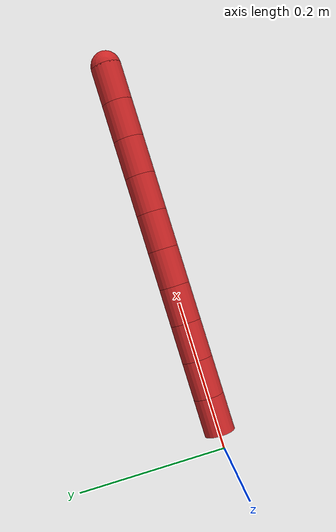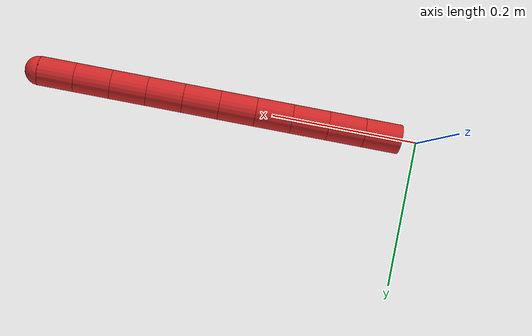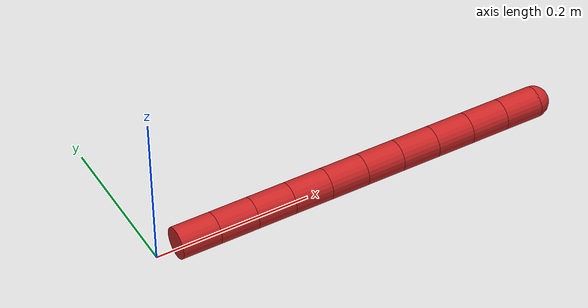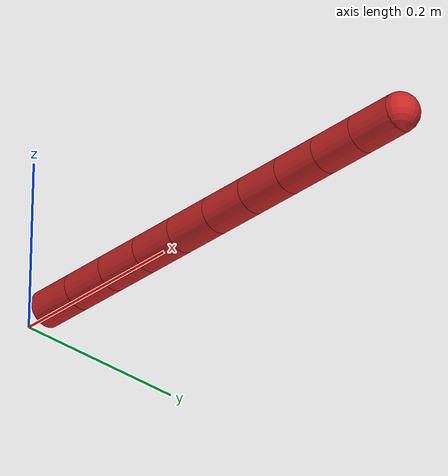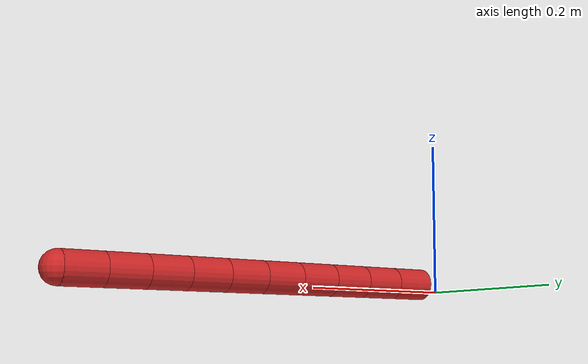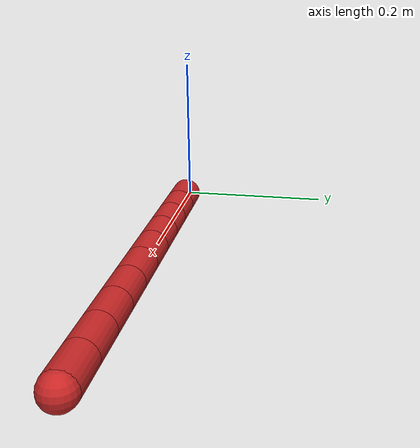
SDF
<sdf version="1.6">
    <model name="link_bot">
        <pose frame="">0 0 0.01 0 0 0</pose>

        <link name="rope_link_1">
        <pose frame="">0.05 0 0 3.14159 -1.57079 3.14159</pose>
        <inertial>
            <pose frame="">0.025 0 0 0 0 0</pose>
            <mass>0.05</mass>
            <inertia>
                <ixx>1.5416666666666668e-05</ixx>
                <ixy>0</ixy>
                <ixz>0</ixz>
                <iyy>1.5416666666666668e-05</iyy>
                <iyz>0</iyz>
                <izz>1.0e-05</izz>
            </inertia>
        </inertial>
        <collision name="link_1_collision">
            <pose frame="">0 0 0 0 0 0</pose>
            <geometry>
                <box>
                    <size>0.04000000000000001 0.04000000000000001 0.02</size>
                </box>
            </geometry>
            <surface>
                <friction>
                    <ode>
                        <mu>0.10</mu>
                        <mu2>0.10</mu2>
                    </ode>
                </friction>
                <contact>
                    <ode>
                        <kp>1e15</kp>
                        <kd>1e13</kd>
                    </ode>
                </contact>
            </surface>
        </collision>

        <visual name="link_1_visual">
            <cast_shadows>0</cast_shadows>
            <pose frame="">0 0 0 0 0 0</pose>
            <geometry>
                <cylinder>
                    <length>0.05</length>
                    <radius>0.02</radius>
                </cylinder>
            </geometry>
            <material>
                <script>
                    <name>Gazebo/Red</name>
                    <uri>file://media/materials/scripts/gazebo.material</uri>
                </script>
            </material>
        </visual>
        <self_collide>1</self_collide>
        </link>

        <link name="rope_link_2">
        <pose frame="">0.1 0 0 3.14159 -1.57079 3.14159</pose>
        <inertial>
            <pose frame="">0.025 0 0 0 0 0</pose>
            <mass>0.05</mass>
            <inertia>
                <ixx>1.5416666666666668e-05</ixx>
                <ixy>0</ixy>
                <ixz>0</ixz>
                <iyy>1.5416666666666668e-05</iyy>
                <iyz>0</iyz>
                <izz>1.0e-05</izz>
            </inertia>
        </inertial>
        <collision name="link_2_collision">
            <pose frame="">0 0 0 0 0 0</pose>
            <geometry>
                <box>
                    <size>0.04000000000000001 0.04000000000000001 0.02</size>
                </box>
            </geometry>
            <surface>
                <friction>
                    <ode>
                        <mu>0.10</mu>
                        <mu2>0.10</mu2>
                    </ode>
                </friction>
                <contact>
                    <ode>
                        <kp>1e15</kp>
                        <kd>1e13</kd>
                    </ode>
                </contact>
            </surface>
        </collision>

        <visual name="link_2_visual">
            <cast_shadows>0</cast_shadows>
            <pose frame="">0 0 0 0 0 0</pose>
            <geometry>
                <cylinder>
                    <length>0.05</length>
                    <radius>0.02</radius>
                </cylinder>
            </geometry>
            <material>
                <script>
                    <name>Gazebo/Red</name>
                    <uri>file://media/materials/scripts/gazebo.material</uri>
                </script>
            </material>
        </visual>
        <self_collide>1</self_collide>
        </link>

        <link name="rope_link_3">
        <pose frame="">0.15000000000000002 0 0 3.14159 -1.57079 3.14159</pose>
        <inertial>
            <pose frame="">0.025 0 0 0 0 0</pose>
            <mass>0.05</mass>
            <inertia>
                <ixx>1.5416666666666668e-05</ixx>
                <ixy>0</ixy>
                <ixz>0</ixz>
                <iyy>1.5416666666666668e-05</iyy>
                <iyz>0</iyz>
                <izz>1.0e-05</izz>
            </inertia>
        </inertial>
        <collision name="link_3_collision">
            <pose frame="">0 0 0 0 0 0</pose>
            <geometry>
                <box>
                    <size>0.04000000000000001 0.04000000000000001 0.02</size>
                </box>
            </geometry>
            <surface>
                <friction>
                    <ode>
                        <mu>0.10</mu>
                        <mu2>0.10</mu2>
                    </ode>
                </friction>
                <contact>
                    <ode>
                        <kp>1e15</kp>
                        <kd>1e13</kd>
                    </ode>
                </contact>
            </surface>
        </collision>

        <visual name="link_3_visual">
            <cast_shadows>0</cast_shadows>
            <pose frame="">0 0 0 0 0 0</pose>
            <geometry>
                <cylinder>
                    <length>0.05</length>
                    <radius>0.02</radius>
                </cylinder>
            </geometry>
            <material>
                <script>
                    <name>Gazebo/Red</name>
                    <uri>file://media/materials/scripts/gazebo.material</uri>
                </script>
            </material>
        </visual>
        <self_collide>1</self_collide>
        </link>

        <link name="rope_link_4">
        <pose frame="">0.2 0 0 3.14159 -1.57079 3.14159</pose>
        <inertial>
            <pose frame="">0.025 0 0 0 0 0</pose>
            <mass>0.05</mass>
            <inertia>
                <ixx>1.5416666666666668e-05</ixx>
                <ixy>0</ixy>
                <ixz>0</ixz>
                <iyy>1.5416666666666668e-05</iyy>
                <iyz>0</iyz>
                <izz>1.0e-05</izz>
            </inertia>
        </inertial>
        <collision name="link_4_collision">
            <pose frame="">0 0 0 0 0 0</pose>
            <geometry>
                <box>
                    <size>0.04000000000000001 0.04000000000000001 0.02</size>
                </box>
            </geometry>
            <surface>
                <friction>
                    <ode>
                        <mu>0.10</mu>
                        <mu2>0.10</mu2>
                    </ode>
                </friction>
                <contact>
                    <ode>
                        <kp>1e15</kp>
                        <kd>1e13</kd>
                    </ode>
                </contact>
            </surface>
        </collision>

        <visual name="link_4_visual">
            <cast_shadows>0</cast_shadows>
            <pose frame="">0 0 0 0 0 0</pose>
            <geometry>
                <cylinder>
                    <length>0.05</length>
                    <radius>0.02</radius>
                </cylinder>
            </geometry>
            <material>
                <script>
                    <name>Gazebo/Red</name>
                    <uri>file://media/materials/scripts/gazebo.material</uri>
                </script>
            </material>
        </visual>
        <self_collide>1</self_collide>
        </link>

        <link name="rope_link_5">
        <pose frame="">0.25 0 0 3.14159 -1.57079 3.14159</pose>
        <inertial>
            <pose frame="">0.025 0 0 0 0 0</pose>
            <mass>0.05</mass>
            <inertia>
                <ixx>1.5416666666666668e-05</ixx>
                <ixy>0</ixy>
                <ixz>0</ixz>
                <iyy>1.5416666666666668e-05</iyy>
                <iyz>0</iyz>
                <izz>1.0e-05</izz>
            </inertia>
        </inertial>
        <collision name="link_5_collision">
            <pose frame="">0 0 0 0 0 0</pose>
            <geometry>
                <box>
                    <size>0.04000000000000001 0.04000000000000001 0.02</size>
                </box>
            </geometry>
            <surface>
                <friction>
                    <ode>
                        <mu>0.10</mu>
                        <mu2>0.10</mu2>
                    </ode>
                </friction>
                <contact>
                    <ode>
                        <kp>1e15</kp>
                        <kd>1e13</kd>
                    </ode>
                </contact>
            </surface>
        </collision>

        <visual name="link_5_visual">
            <cast_shadows>0</cast_shadows>
            <pose frame="">0 0 0 0 0 0</pose>
            <geometry>
                <cylinder>
                    <length>0.05</length>
                    <radius>0.02</radius>
                </cylinder>
            </geometry>
            <material>
                <script>
                    <name>Gazebo/Red</name>
                    <uri>file://media/materials/scripts/gazebo.material</uri>
                </script>
            </material>
        </visual>
        <self_collide>1</self_collide>
        </link>

        <link name="rope_link_6">
        <pose frame="">0.30000000000000004 0 0 3.14159 -1.57079 3.14159</pose>
        <inertial>
            <pose frame="">0.025 0 0 0 0 0</pose>
            <mass>0.05</mass>
            <inertia>
                <ixx>1.5416666666666668e-05</ixx>
                <ixy>0</ixy>
                <ixz>0</ixz>
                <iyy>1.5416666666666668e-05</iyy>
                <iyz>0</iyz>
                <izz>1.0e-05</izz>
            </inertia>
        </inertial>
        <collision name="link_6_collision">
            <pose frame="">0 0 0 0 0 0</pose>
            <geometry>
                <box>
                    <size>0.04000000000000001 0.04000000000000001 0.02</size>
                </box>
            </geometry>
            <surface>
                <friction>
                    <ode>
                        <mu>0.10</mu>
                        <mu2>0.10</mu2>
                    </ode>
                </friction>
                <contact>
                    <ode>
                        <kp>1e15</kp>
                        <kd>1e13</kd>
                    </ode>
                </contact>
            </surface>
        </collision>

        <visual name="link_6_visual">
            <cast_shadows>0</cast_shadows>
            <pose frame="">0 0 0 0 0 0</pose>
            <geometry>
                <cylinder>
                    <length>0.05</length>
                    <radius>0.02</radius>
                </cylinder>
            </geometry>
            <material>
                <script>
                    <name>Gazebo/Red</name>
                    <uri>file://media/materials/scripts/gazebo.material</uri>
                </script>
            </material>
        </visual>
        <self_collide>1</self_collide>
        </link>

        <link name="rope_link_7">
        <pose frame="">0.35000000000000003 0 0 3.14159 -1.57079 3.14159</pose>
        <inertial>
            <pose frame="">0.025 0 0 0 0 0</pose>
            <mass>0.05</mass>
            <inertia>
                <ixx>1.5416666666666668e-05</ixx>
                <ixy>0</ixy>
                <ixz>0</ixz>
                <iyy>1.5416666666666668e-05</iyy>
                <iyz>0</iyz>
                <izz>1.0e-05</izz>
            </inertia>
        </inertial>
        <collision name="link_7_collision">
            <pose frame="">0 0 0 0 0 0</pose>
            <geometry>
                <box>
                    <size>0.04000000000000001 0.04000000000000001 0.02</size>
                </box>
            </geometry>
            <surface>
                <friction>
                    <ode>
                        <mu>0.10</mu>
                        <mu2>0.10</mu2>
                    </ode>
                </friction>
                <contact>
                    <ode>
                        <kp>1e15</kp>
                        <kd>1e13</kd>
                    </ode>
                </contact>
            </surface>
        </collision>

        <visual name="link_7_visual">
            <cast_shadows>0</cast_shadows>
            <pose frame="">0 0 0 0 0 0</pose>
            <geometry>
                <cylinder>
                    <length>0.05</length>
                    <radius>0.02</radius>
                </cylinder>
            </geometry>
            <material>
                <script>
                    <name>Gazebo/Red</name>
                    <uri>file://media/materials/scripts/gazebo.material</uri>
                </script>
            </material>
        </visual>
        <self_collide>1</self_collide>
        </link>

        <link name="rope_link_8">
        <pose frame="">0.4 0 0 3.14159 -1.57079 3.14159</pose>
        <inertial>
            <pose frame="">0.025 0 0 0 0 0</pose>
            <mass>0.05</mass>
            <inertia>
                <ixx>1.5416666666666668e-05</ixx>
                <ixy>0</ixy>
                <ixz>0</ixz>
                <iyy>1.5416666666666668e-05</iyy>
                <iyz>0</iyz>
                <izz>1.0e-05</izz>
            </inertia>
        </inertial>
        <collision name="link_8_collision">
            <pose frame="">0 0 0 0 0 0</pose>
            <geometry>
                <box>
                    <size>0.04000000000000001 0.04000000000000001 0.02</size>
                </box>
            </geometry>
            <surface>
                <friction>
                    <ode>
                        <mu>0.10</mu>
                        <mu2>0.10</mu2>
                    </ode>
                </friction>
                <contact>
                    <ode>
                        <kp>1e15</kp>
                        <kd>1e13</kd>
                    </ode>
                </contact>
            </surface>
        </collision>

        <visual name="link_8_visual">
            <cast_shadows>0</cast_shadows>
            <pose frame="">0 0 0 0 0 0</pose>
            <geometry>
                <cylinder>
                    <length>0.05</length>
                    <radius>0.02</radius>
                </cylinder>
            </geometry>
            <material>
                <script>
                    <name>Gazebo/Red</name>
                    <uri>file://media/materials/scripts/gazebo.material</uri>
                </script>
            </material>
        </visual>
        <self_collide>1</self_collide>
        </link>

        <link name="rope_link_9">
        <pose frame="">0.45 0 0 3.14159 -1.57079 3.14159</pose>
        <inertial>
            <pose frame="">0.025 0 0 0 0 0</pose>
            <mass>0.05</mass>
            <inertia>
                <ixx>1.5416666666666668e-05</ixx>
                <ixy>0</ixy>
                <ixz>0</ixz>
                <iyy>1.5416666666666668e-05</iyy>
                <iyz>0</iyz>
                <izz>1.0e-05</izz>
            </inertia>
        </inertial>
        <collision name="link_9_collision">
            <pose frame="">0 0 0 0 0 0</pose>
            <geometry>
                <box>
                    <size>0.04000000000000001 0.04000000000000001 0.02</size>
                </box>
            </geometry>
            <surface>
                <friction>
                    <ode>
                        <mu>0.10</mu>
                        <mu2>0.10</mu2>
                    </ode>
                </friction>
                <contact>
                    <ode>
                        <kp>1e15</kp>
                        <kd>1e13</kd>
                    </ode>
                </contact>
            </surface>
        </collision>

        <visual name="link_9_visual">
            <cast_shadows>0</cast_shadows>
            <pose frame="">0 0 0 0 0 0</pose>
            <geometry>
                <cylinder>
                    <length>0.05</length>
                    <radius>0.02</radius>
                </cylinder>
            </geometry>
            <material>
                <script>
                    <name>Gazebo/Red</name>
                    <uri>file://media/materials/scripts/gazebo.material</uri>
                </script>
            </material>
        </visual>
        <self_collide>1</self_collide>
        </link>

        <link name="rope_link_10">
        <pose frame="">0.5 0 0 3.14159 -1.57079 3.14159</pose>
        <inertial>
            <pose frame="">0.025 0 0 0 0 0</pose>
            <mass>0.05</mass>
            <inertia>
                <ixx>1.5416666666666668e-05</ixx>
                <ixy>0</ixy>
                <ixz>0</ixz>
                <iyy>1.5416666666666668e-05</iyy>
                <iyz>0</iyz>
                <izz>1.0e-05</izz>
            </inertia>
        </inertial>
        <collision name="link_10_collision">
            <pose frame="">0 0 0 0 0 0</pose>
            <geometry>
                <box>
                    <size>0.04000000000000001 0.04000000000000001 0.02</size>
                </box>
            </geometry>
            <surface>
                <friction>
                    <ode>
                        <mu>0.10</mu>
                        <mu2>0.10</mu2>
                    </ode>
                </friction>
                <contact>
                    <ode>
                        <kp>1e15</kp>
                        <kd>1e13</kd>
                    </ode>
                </contact>
            </surface>
        </collision>

        <visual name="link_10_visual">
            <cast_shadows>0</cast_shadows>
            <pose frame="">0 0 0 0 0 0</pose>
            <geometry>
                <cylinder>
                    <length>0.05</length>
                    <radius>0.02</radius>
                </cylinder>
            </geometry>
            <material>
                <script>
                    <name>Gazebo/Red</name>
                    <uri>file://media/materials/scripts/gazebo.material</uri>
                </script>
            </material>
        </visual>
        <self_collide>1</self_collide>
        </link>

        <joint name="joint_1" type="revolute">
            <child>rope_link_2</child>
            <parent>rope_link_1</parent>
            <pose>0 0 0.025 0 0 0</pose>
            <axis>
                <xyz>0 0 1</xyz>
                <limit>
                    <lower>-2.8</lower>
                    <upper>2.8</upper>
                    <effort>10</effort>
                    <velocity>5</velocity>
                </limit>
                <dynamics>
                    <damping>0.0</damping>
                    <friction>0</friction>
                </dynamics>
                <use_parent_model_frame>1</use_parent_model_frame>
            </axis>
            <physics>
                <ode>
                    <cfm>0.0001</cfm>
                    <implicit_spring_damper>1</implicit_spring_damper>
                </ode>
            </physics>
        </joint>

        <joint name="joint_2" type="revolute">
            <child>rope_link_3</child>
            <parent>rope_link_2</parent>
            <pose>0 0 0.025 0 0 0</pose>
            <axis>
                <xyz>0 0 1</xyz>
                <limit>
                    <lower>-2.8</lower>
                    <upper>2.8</upper>
                    <effort>10</effort>
                    <velocity>5</velocity>
                </limit>
                <dynamics>
                    <damping>0.0</damping>
                    <friction>0</friction>
                </dynamics>
                <use_parent_model_frame>1</use_parent_model_frame>
            </axis>
            <physics>
                <ode>
                    <cfm>0.0001</cfm>
                    <implicit_spring_damper>1</implicit_spring_damper>
                </ode>
            </physics>
        </joint>

        <joint name="joint_3" type="revolute">
            <child>rope_link_4</child>
            <parent>rope_link_3</parent>
            <pose>0 0 0.025 0 0 0</pose>
            <axis>
                <xyz>0 0 1</xyz>
                <limit>
                    <lower>-2.8</lower>
                    <upper>2.8</upper>
                    <effort>10</effort>
                    <velocity>5</velocity>
                </limit>
                <dynamics>
                    <damping>0.0</damping>
                    <friction>0</friction>
                </dynamics>
                <use_parent_model_frame>1</use_parent_model_frame>
            </axis>
            <physics>
                <ode>
                    <cfm>0.0001</cfm>
                    <implicit_spring_damper>1</implicit_spring_damper>
                </ode>
            </physics>
        </joint>

        <joint name="joint_4" type="revolute">
            <child>rope_link_5</child>
            <parent>rope_link_4</parent>
            <pose>0 0 0.025 0 0 0</pose>
            <axis>
                <xyz>0 0 1</xyz>
                <limit>
                    <lower>-2.8</lower>
                    <upper>2.8</upper>
                    <effort>10</effort>
                    <velocity>5</velocity>
                </limit>
                <dynamics>
                    <damping>0.0</damping>
                    <friction>0</friction>
                </dynamics>
                <use_parent_model_frame>1</use_parent_model_frame>
            </axis>
            <physics>
                <ode>
                    <cfm>0.0001</cfm>
                    <implicit_spring_damper>1</implicit_spring_damper>
                </ode>
            </physics>
        </joint>

        <joint name="joint_5" type="revolute">
            <child>rope_link_6</child>
            <parent>rope_link_5</parent>
            <pose>0 0 0.025 0 0 0</pose>
            <axis>
                <xyz>0 0 1</xyz>
                <limit>
                    <lower>-2.8</lower>
                    <upper>2.8</upper>
                    <effort>10</effort>
                    <velocity>5</velocity>
                </limit>
                <dynamics>
                    <damping>0.0</damping>
                    <friction>0</friction>
                </dynamics>
                <use_parent_model_frame>1</use_parent_model_frame>
            </axis>
            <physics>
                <ode>
                    <cfm>0.0001</cfm>
                    <implicit_spring_damper>1</implicit_spring_damper>
                </ode>
            </physics>
        </joint>

        <joint name="joint_6" type="revolute">
            <child>rope_link_7</child>
            <parent>rope_link_6</parent>
            <pose>0 0 0.025 0 0 0</pose>
            <axis>
                <xyz>0 0 1</xyz>
                <limit>
                    <lower>-2.8</lower>
                    <upper>2.8</upper>
                    <effort>10</effort>
                    <velocity>5</velocity>
                </limit>
                <dynamics>
                    <damping>0.0</damping>
                    <friction>0</friction>
                </dynamics>
                <use_parent_model_frame>1</use_parent_model_frame>
            </axis>
            <physics>
                <ode>
                    <cfm>0.0001</cfm>
                    <implicit_spring_damper>1</implicit_spring_damper>
                </ode>
            </physics>
        </joint>

        <joint name="joint_7" type="revolute">
            <child>rope_link_8</child>
            <parent>rope_link_7</parent>
            <pose>0 0 0.025 0 0 0</pose>
            <axis>
                <xyz>0 0 1</xyz>
                <limit>
                    <lower>-2.8</lower>
                    <upper>2.8</upper>
                    <effort>10</effort>
                    <velocity>5</velocity>
                </limit>
                <dynamics>
                    <damping>0.0</damping>
                    <friction>0</friction>
                </dynamics>
                <use_parent_model_frame>1</use_parent_model_frame>
            </axis>
            <physics>
                <ode>
                    <cfm>0.0001</cfm>
                    <implicit_spring_damper>1</implicit_spring_damper>
                </ode>
            </physics>
        </joint>

        <joint name="joint_8" type="revolute">
            <child>rope_link_9</child>
            <parent>rope_link_8</parent>
            <pose>0 0 0.025 0 0 0</pose>
            <axis>
                <xyz>0 0 1</xyz>
                <limit>
                    <lower>-2.8</lower>
                    <upper>2.8</upper>
                    <effort>10</effort>
                    <velocity>5</velocity>
                </limit>
                <dynamics>
                    <damping>0.0</damping>
                    <friction>0</friction>
                </dynamics>
                <use_parent_model_frame>1</use_parent_model_frame>
            </axis>
            <physics>
                <ode>
                    <cfm>0.0001</cfm>
                    <implicit_spring_damper>1</implicit_spring_damper>
                </ode>
            </physics>
        </joint>

        <joint name="joint_9" type="revolute">
            <child>rope_link_10</child>
            <parent>rope_link_9</parent>
            <pose>0 0 0.025 0 0 0</pose>
            <axis>
                <xyz>0 0 1</xyz>
                <limit>
                    <lower>-2.8</lower>
                    <upper>2.8</upper>
                    <effort>10</effort>
                    <velocity>5</velocity>
                </limit>
                <dynamics>
                    <damping>0.0</damping>
                    <friction>0</friction>
                </dynamics>
                <use_parent_model_frame>1</use_parent_model_frame>
            </axis>
            <physics>
                <ode>
                    <cfm>0.0001</cfm>
                    <implicit_spring_damper>1</implicit_spring_damper>
                </ode>
            </physics>
        </joint>

        <link name='head'>
        <pose frame=''>0.525 0 0 0 0 0 </pose>
        <inertial>
            <pose frame=''>0 0 0 0 0 0</pose>
            <mass>0.1</mass>
            <inertia>
                <ixx>0.0001</ixx>
                <ixy>0</ixy>
                <ixz>0</ixz>
                <iyy>0.0001</iyy>
                <iyz>0</iyz>
                <izz>0.001</izz>
            </inertia>
        </inertial>
        <collision name='head_collision'>
            <pose frame=''>0 0 0 0 0 0</pose>
            <geometry>
                <sphere>
                    <radius>0.02 </radius>
                </sphere>
            </geometry>
            <surface>
                <contact>
                    <ode>
                        <kp>1e15</kp>
                        <kd>1e13</kd>
                    </ode>
                </contact>
                <friction>
                    <ode>
                        <mu>0.10</mu>
                        <mu2>0.10</mu2>
                    </ode>
                </friction>
            </surface>
        </collision>
        <visual name='head_visual'>
            <cast_shadows>0</cast_shadows>
            <pose frame=''>0 0 0 0 0 0</pose>
            <geometry>
                <sphere>
                    <radius>0.02</radius>
                </sphere>
            </geometry>
            <material>
                <script>
                    <name>Gazebo/Red</name>
                    <uri>file://media/materials/scripts/gazebo.material</uri>
                </script>
            </material>
        </visual>
        <self_collide>1</self_collide>
        </link>
        <joint name="head_joint" type="revolute">
            <child>head</child>
            <parent>rope_link_10</parent>
            <pose>0 0 0 0 0 0</pose>
            <axis>
                <xyz>0 0 1</xyz>
                <dynamics>
                    <damping>0.0</damping>
                    <friction>0.0</friction>
                </dynamics>
            </axis>
            <physics>
                <ode>
                    <cfm>0.0005</cfm>
                    <implicit_spring_damper>1</implicit_spring_damper>
                </ode>
            </physics>
        </joint>
        <plugin name='rope_plugin' filename='librope_plugin.so'>
            <num_links>10</num_links>
            <rope_length>0.5</rope_length>
        </plugin>
        <plugin name='position_3d_plugin' filename='libposition_3d_plugin.so'>
            <object_name>gripper</object_name>
            <gravity_compensation>true</gravity_compensation>
            <kP_pos>5</kP_pos>
            <kD_pos>0.0</kD_pos>
            <kP_vel>200.0</kP_vel>
            <kI_vel>0.05</kI_vel>
            <kD_vel>0.0</kD_vel>
            <max_force>2.0</max_force>
            <max_vel>0.15</max_vel>
            <kP_rot>0.0</kP_rot>
            <kI_rot>0.0</kI_rot>
            <kD_rot>0.0</kD_rot>
            <kP_rot_vel>0.0</kP_rot_vel>
            <kI_rot_vel>0.0</kI_rot_vel>
            <kD_rot_vel>0.0</kD_rot_vel>
            <max_torque>0.0</max_torque>
            <max_rot_vel>0.0</max_rot_vel>
            <link>head</link>
        </plugin>
    </model>
</sdf>
